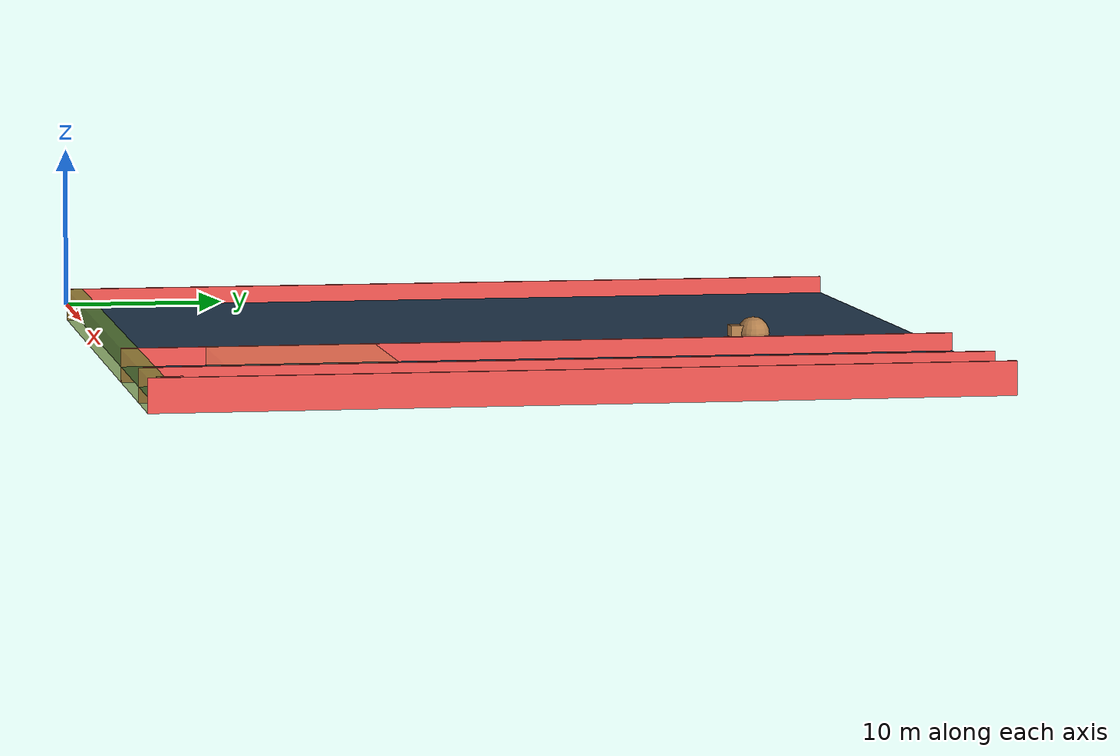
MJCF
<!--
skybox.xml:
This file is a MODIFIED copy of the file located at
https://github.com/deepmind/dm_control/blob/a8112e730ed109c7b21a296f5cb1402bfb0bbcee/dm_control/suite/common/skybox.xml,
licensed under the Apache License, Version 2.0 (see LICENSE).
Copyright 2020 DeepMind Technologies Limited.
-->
<mujoco model="point">
    <include file="./common/skybox.xml"/>
    <include file="./common/visual.xml"/>
    <include file="./common/materials.xml"/>

    <worldbody>
        <!-- Floor from x=0 to x=50, y=0 to y=50 -->
        <geom name="floor" pos="25 25 0" size="25 25 0.1" type="plane" condim="3" material="gridbig"/>

        <camera name="top" pos="25 25.5 62" xyaxes="1 0 0 0 1 0.0" />

        <!-- Wall at x=0, extends from y=0 to y=50 -->
0       <geom name="wall_0" pos="0 25 0" size="0.1 25 1.0" type="box" material="danger"/>
        <geom name="wall_1" pos="35 25 0" size="0.1 25 1.0" type="box" material="danger"/>
        <geom name="wall_2" pos="45 25 0" size="0.1 25 1.0" type="box" material="danger"/>
        <geom name="wall_3" pos="50 25 0" size="0.1 25 1.0" type="box" material="danger"/>

        <!-- Rectangular obstacle from (45, 1) to (50, 2.5) -->
        <geom name="obstacle" pos="47.5 1.75 0" size="2.5 0.75 0.5" type="box" material="danger_fill"/>

        <!-- Mark the wind region from (35, 5) to (45, 15) -->
        <geom name="wind_region" pos="40 10 0" size="5 5 1.0" type="box" material="wind"/>

        <!-- Add goal region in green from (0, 0) to (50, 1) -->
        <geom name="goal" pos="25 .5 0" size="25 .5 1.0" type="box" material="goal"/>

        <body name="robot" pos="25 40 .1" euler="0 0 -90">
            <light name="light" pos="0 0 1.5" exponent="100" mode="trackcom"/>

            <camera name="vision" pos="0 0 .15" xyaxes="0 -1 0 .4 0 1" fovy="90"/>
            <joint type="slide" axis="1 0 0" name="x" damping="0.01"/>
            <joint type="slide" axis="0 1 0" name="y" damping="0.01"/>
            <joint type="hinge" axis="0 0 1" name="z" damping="0.005"/>
            <geom name="robot" type="sphere" size="1.0" friction="1 0.01 0.01" material="self" />
            <geom name="pointarrow" pos="1.0 0 0" size="0.5 0.5 0.5" type="box" material="self" />
            <site name="robot" rgba="1 0 0 .1"/>
        </body>
    </worldbody>
</mujoco>

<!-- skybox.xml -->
<mujoco>
  <asset>
      <texture name="skybox" type="skybox" builtin="gradient" rgb1=".4 .6 .8" rgb2="0 0 0"
               width="800" height="800" mark="random" markrgb="1 1 1"/>
  </asset>
</mujoco>

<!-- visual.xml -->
<mujoco>
  <visual>
    <headlight ambient=".4 .4 .4" diffuse=".8 .8 .8" specular="0.1 0.1 0.1"/>
    <map znear=".01"/>
    <quality shadowsize="2048"/>
  </visual>
</mujoco>

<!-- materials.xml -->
<!--
Common textures, colors and materials to be used throughout this suite. Some
materials such as xxx_highlight are activated on occurence of certain events,
for example receiving a positive reward.
-->
<mujoco>
  <asset>
    <texture name="grid" type="2d" builtin="checker" rgb1=".1 .2 .3" rgb2=".2 .3 .4" width="300" height="300" mark="edge" markrgb=".2 .3 .4"/>
    <material name="grid" texture="grid" texrepeat="1 1" texuniform="true" reflectance=".2"/>
    <material name="gridbig" texture="grid" texrepeat="0.25 0.25" texuniform="true" reflectance=".2"/>

    <material name="self" rgba=".7 .5 .3 1"/>
    <material name="self_default" rgba=".7 .5 .3 1"/>
    <material name="self_highlight" rgba="0 .5 .3 1"/>

    <material name="effector" rgba=".7 .4 .2 1"/>
    <material name="effector_default" rgba=".7 .4 .2 1"/>
    <material name="effector_highlight" rgba="0 .5 .3 1"/>

    <material name="decoration" rgba=".3 .5 .7 1"/>

    <material name="eye" rgba="0 .2 1 1"/>

    <material name="target" rgba=".6 .3 .3 1"/>
    <material name="target_default" rgba=".6 .3 .3 1"/>
    <material name="target_highlight" rgba=".6 .3 .3 .4"/>
    <material name="site" rgba=".5 .5 .5 .3"/>

    <material name="wind" rgba=".98 .76 .37 .3"/>

    <material name="goal" rgba="0.55 0.72 0.26 .7"/>

    <material name="danger" rgba=".93 .33 .31 .9"/>
    <material name="danger_fill" rgba=".93 .33 .31 1."/>

    <texture name="gridlight" type="2d" builtin="checker" rgb1=".2 .3 .4" rgb2=".4 .5 .6" width="300" height="300" mark="edge" markrgb=".2 .3 .4"/>
    <material name="gridlight" texture="gridlight" texrepeat="1 1" texuniform="true" reflectance=".2"/>
  </asset>
</mujoco>
